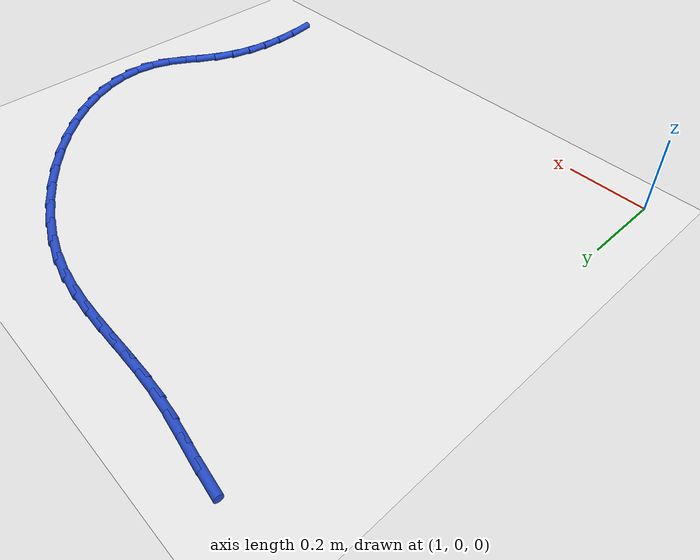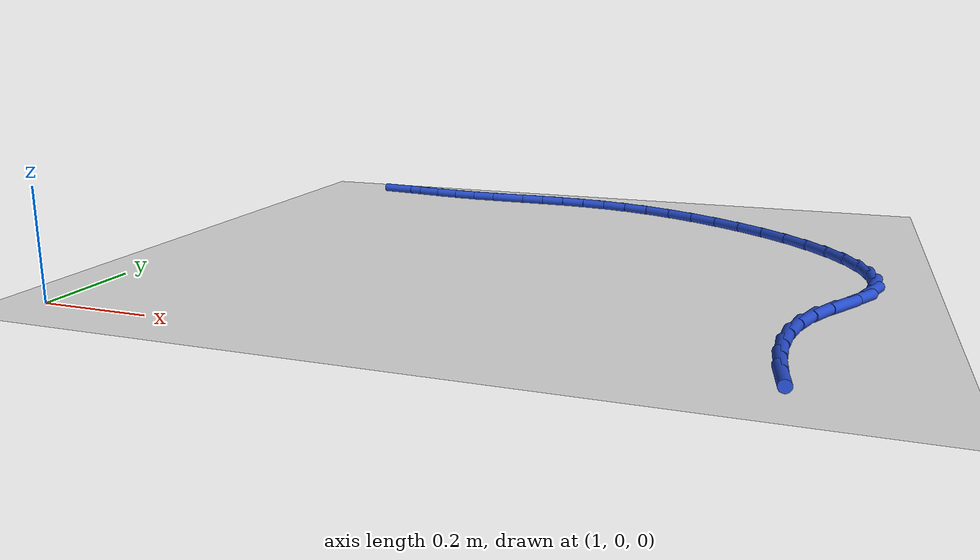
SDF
<sdf version="1.6">
 <world name="default">
  <model name="ground_plane">
   <static>1</static>
   <link name="link">
    <collision name="collision">
     <geometry><plane><normal>0 0 1</normal><size>100 100</size></plane></geometry>
     <surface><friction><ode><mu>100</mu><mu2>50</mu2></ode></friction></surface>
    </collision>
    <visual name="visual">
     <cast_shadows>0</cast_shadows>
     <geometry><plane><normal>0 0 1</normal><size>100 100</size></plane></geometry>
     <material>
      <script><uri>file://media/materials/scripts/gazebo.material</uri><name>Gazebo/WhiteGlow</name></script>
     </material>
    </visual>
   </link>
  </model>
  <model name="line">
   <link name="link_33">
    <pose>1.1399664649411008 1.140845286994282 0.01 0 1.57 -0.13207742308611625</pose>
    <collision name="collision">
     <geometry><cylinder><radius>0.01</radius><length>0.08</length></cylinder></geometry>
    </collision>
    <visual name="visual">
     <material>
      <script><name>Gazebo/Blue</name><uri>file://media/materials/scripts/gazebo.material</uri></script>
     </material>
     <geometry><cylinder><radius>0.01</radius><length>0.08</length></cylinder></geometry>
    </visual>
   </link>
   <link name="link_34">
    <pose>1.1952935334830628 1.1334950402394344 0.01 0 1.57 -0.15188084753118042</pose>
    <collision name="collision">
     <geometry><cylinder><radius>0.01</radius><length>0.08</length></cylinder></geometry>
    </collision>
    <visual name="visual">
     <material>
      <script><name>Gazebo/Blue</name><uri>file://media/materials/scripts/gazebo.material</uri></script>
     </material>
     <geometry><cylinder><radius>0.01</radius><length>0.08</length></cylinder></geometry>
    </visual>
   </link>
   <link name="link_35">
    <pose>1.2498085945413606 1.125150988057739 0.01 0 1.57 -0.14065346948717775</pose>
    <collision name="collision">
     <geometry><cylinder><radius>0.01</radius><length>0.08</length></cylinder></geometry>
    </collision>
    <visual name="visual">
     <material>
      <script><name>Gazebo/Blue</name><uri>file://media/materials/scripts/gazebo.material</uri></script>
     </material>
     <geometry><cylinder><radius>0.01</radius><length>0.08</length></cylinder></geometry>
    </visual>
   </link>
   <link name="link_36">
    <pose>1.3036869164387312 1.1175224424934112 0.01 0 1.57 -0.09560418442787234</pose>
    <collision name="collision">
     <geometry><cylinder><radius>0.01</radius><length>0.08</length></cylinder></geometry>
    </collision>
    <visual name="visual">
     <material>
      <script><name>Gazebo/Blue</name><uri>file://media/materials/scripts/gazebo.material</uri></script>
     </material>
     <geometry><cylinder><radius>0.01</radius><length>0.08</length></cylinder></geometry>
    </visual>
   </link>
   <link name="link_37">
    <pose>1.3571548655604277 1.1123950515726995 0.01 0 1.57 -0.044473799728148286</pose>
    <collision name="collision">
     <geometry><cylinder><radius>0.01</radius><length>0.08</length></cylinder></geometry>
    </collision>
    <visual name="visual">
     <material>
      <script><name>Gazebo/Blue</name><uri>file://media/materials/scripts/gazebo.material</uri></script>
     </material>
     <geometry><cylinder><radius>0.01</radius><length>0.08</length></cylinder></geometry>
    </visual>
   </link>
   <link name="link_38">
    <pose>1.4104235965559766 1.1100244255238378 0.01 0 1.57 -0.012918150865808532</pose>
    <collision name="collision">
     <geometry><cylinder><radius>0.01</radius><length>0.08</length></cylinder></geometry>
    </collision>
    <visual name="visual">
     <material>
      <script><name>Gazebo/Blue</name><uri>file://media/materials/scripts/gazebo.material</uri></script>
     </material>
     <geometry><cylinder><radius>0.01</radius><length>0.08</length></cylinder></geometry>
    </visual>
   </link>
   <link name="link_39">
    <pose>1.4636910420801956 1.1093362703464313 0.01 0 1.57 -0.0023242293383107107</pose>
    <collision name="collision">
     <geometry><cylinder><radius>0.01</radius><length>0.08</length></cylinder></geometry>
    </collision>
    <visual name="visual">
     <material>
      <script><name>Gazebo/Blue</name><uri>file://media/materials/scripts/gazebo.material</uri></script>
     </material>
     <geometry><cylinder><radius>0.01</radius><length>0.08</length></cylinder></geometry>
    </visual>
   </link>
   <link name="link_40">
    <pose>1.5171546945163963 1.1092120083331496 0.01 0 1.57 -0.012605718101820682</pose>
    <collision name="collision">
     <geometry><cylinder><radius>0.01</radius><length>0.08</length></cylinder></geometry>
    </collision>
    <visual name="visual">
     <material>
      <script><name>Gazebo/Blue</name><uri>file://media/materials/scripts/gazebo.material</uri></script>
     </material>
     <geometry><cylinder><radius>0.01</radius><length>0.08</length></cylinder></geometry>
    </visual>
   </link>
   <link name="link_41">
    <pose>1.571012046247889 1.1085330617766604 0.01 0 1.57 -0.043173737893640346</pose>
    <collision name="collision">
     <geometry><cylinder><radius>0.01</radius><length>0.08</length></cylinder></geometry>
    </collision>
    <visual name="visual">
     <material>
      <script><name>Gazebo/Blue</name><uri>file://media/materials/scripts/gazebo.material</uri></script>
     </material>
     <geometry><cylinder><radius>0.01</radius><length>0.08</length></cylinder></geometry>
    </visual>
   </link>
   <link name="link_42">
    <pose>1.6254605896579868 1.1061808529696338 0.01 0 1.57 -0.0928586615179386</pose>
    <collision name="collision">
     <geometry><cylinder><radius>0.01</radius><length>0.08</length></cylinder></geometry>
    </collision>
    <visual name="visual">
     <material>
      <script><name>Gazebo/Blue</name><uri>file://media/materials/scripts/gazebo.material</uri></script>
     </material>
     <geometry><cylinder><radius>0.01</radius><length>0.08</length></cylinder></geometry>
    </visual>
   </link>
   <link name="link_43">
    <pose>1.6806978171299982 1.1010368042047372 0.01 0 1.57 -0.1596734627402512</pose>
    <collision name="collision">
     <geometry><cylinder><radius>0.01</radius><length>0.08</length></cylinder></geometry>
    </collision>
    <visual name="visual">
     <material>
      <script><name>Gazebo/Blue</name><uri>file://media/materials/scripts/gazebo.material</uri></script>
     </material>
     <geometry><cylinder><radius>0.01</radius><length>0.08</length></cylinder></geometry>
    </visual>
   </link>
   <link name="link_44">
    <pose>1.7369212210472371 1.0919823377746407 0.01 0 1.57 -0.24056703282645728</pose>
    <collision name="collision">
     <geometry><cylinder><radius>0.01</radius><length>0.08</length></cylinder></geometry>
    </collision>
    <visual name="visual">
     <material>
      <script><name>Gazebo/Blue</name><uri>file://media/materials/scripts/gazebo.material</uri></script>
     </material>
     <geometry><cylinder><radius>0.01</radius><length>0.08</length></cylinder></geometry>
    </visual>
   </link>
   <link name="link_45">
    <pose>1.7943279041669606 1.0778994579160637 0.01 0 1.57 -0.32682078058079633</pose>
    <collision name="collision">
     <geometry><cylinder><radius>0.01</radius><length>0.08</length></cylinder></geometry>
    </collision>
    <visual name="visual">
     <material>
      <script><name>Gazebo/Blue</name><uri>file://media/materials/scripts/gazebo.material</uri></script>
     </material>
     <geometry><cylinder><radius>0.01</radius><length>0.08</length></cylinder></geometry>
    </visual>
   </link>
   <link name="link_46">
    <pose>1.8528535366499002 1.0580606436388436 0.01 0 1.57 -0.40527572523311445</pose>
    <collision name="collision">
     <geometry><cylinder><radius>0.01</radius><length>0.08</length></cylinder></geometry>
    </collision>
    <visual name="visual">
     <material>
      <script><name>Gazebo/Blue</name><uri>file://media/materials/scripts/gazebo.material</uri></script>
     </material>
     <geometry><cylinder><radius>0.01</radius><length>0.08</length></cylinder></geometry>
    </visual>
   </link>
   <link name="link_47">
    <pose>1.911719139091342 1.0328057719384887 0.01 0 1.57 -0.47724063288800106</pose>
    <collision name="collision">
     <geometry><cylinder><radius>0.01</radius><length>0.08</length></cylinder></geometry>
    </collision>
    <visual name="visual">
     <material>
      <script><name>Gazebo/Blue</name><uri>file://media/materials/scripts/gazebo.material</uri></script>
     </material>
     <geometry><cylinder><radius>0.01</radius><length>0.08</length></cylinder></geometry>
    </visual>
   </link>
   <link name="link_48">
    <pose>1.9700247293467827 1.0026554490615425 0.01 0 1.57 -0.5458063292827189</pose>
    <collision name="collision">
     <geometry><cylinder><radius>0.01</radius><length>0.08</length></cylinder></geometry>
    </collision>
    <visual name="visual">
     <material>
      <script><name>Gazebo/Blue</name><uri>file://media/materials/scripts/gazebo.material</uri></script>
     </material>
     <geometry><cylinder><radius>0.01</radius><length>0.08</length></cylinder></geometry>
    </visual>
   </link>
   <link name="link_49">
    <pose>2.0268703252717164 0.9681302812545499 0.01 0 1.57 -0.613669647728787</pose>
    <collision name="collision">
     <geometry><cylinder><radius>0.01</radius><length>0.08</length></cylinder></geometry>
    </collision>
    <visual name="visual">
     <material>
      <script><name>Gazebo/Blue</name><uri>file://media/materials/scripts/gazebo.material</uri></script>
     </material>
     <geometry><cylinder><radius>0.01</radius><length>0.08</length></cylinder></geometry>
    </visual>
   </link>
   <link name="link_50">
    <pose>2.0813559447216394 0.9297508747640546 0.01 0 1.57 -0.6833996395674194</pose>
    <collision name="collision">
     <geometry><cylinder><radius>0.01</radius><length>0.08</length></cylinder></geometry>
    </collision>
    <visual name="visual">
     <material>
      <script><name>Gazebo/Blue</name><uri>file://media/materials/scripts/gazebo.material</uri></script>
     </material>
     <geometry><cylinder><radius>0.01</radius><length>0.08</length></cylinder></geometry>
    </visual>
   </link>
   <link name="link_51">
    <pose>2.1325816055520463 0.8880378358366012 0.01 0 1.57 -0.7576772888659113</pose>
    <collision name="collision">
     <geometry><cylinder><radius>0.01</radius><length>0.08</length></cylinder></geometry>
    </collision>
    <visual name="visual">
     <material>
      <script><name>Gazebo/Blue</name><uri>file://media/materials/scripts/gazebo.material</uri></script>
     </material>
     <geometry><cylinder><radius>0.01</radius><length>0.08</length></cylinder></geometry>
    </visual>
   </link>
   <link name="link_52">
    <pose>2.179647325618433 0.8435117707187334 0.01 0 1.57 -0.8395273555790623</pose>
    <collision name="collision">
     <geometry><cylinder><radius>0.01</radius><length>0.08</length></cylinder></geometry>
    </collision>
    <visual name="visual">
     <material>
      <script><name>Gazebo/Blue</name><uri>file://media/materials/scripts/gazebo.material</uri></script>
     </material>
     <geometry><cylinder><radius>0.01</radius><length>0.08</length></cylinder></geometry>
    </visual>
   </link>
   <link name="link_53">
    <pose>2.2216531227762943 0.7966932856569958 0.01 0 1.57 -0.9325425542378575</pose>
    <collision name="collision">
     <geometry><cylinder><radius>0.01</radius><length>0.08</length></cylinder></geometry>
    </collision>
    <visual name="visual">
     <material>
      <script><name>Gazebo/Blue</name><uri>file://media/materials/scripts/gazebo.material</uri></script>
     </material>
     <geometry><cylinder><radius>0.01</radius><length>0.08</length></cylinder></geometry>
    </visual>
   </link>
   <link name="link_54">
    <pose>2.257699014881125 0.7481029868979323 0.01 0 1.57 -1.041050001515718</pose>
    <collision name="collision">
     <geometry><cylinder><radius>0.01</radius><length>0.08</length></cylinder></geometry>
    </collision>
    <visual name="visual">
     <material>
      <script><name>Gazebo/Blue</name><uri>file://media/materials/scripts/gazebo.material</uri></script>
     </material>
     <geometry><cylinder><radius>0.01</radius><length>0.08</length></cylinder></geometry>
    </visual>
   </link>
   <link name="link_55">
    <pose>2.2868850197884214 0.6982614806880869 0.01 0 1.57 -1.1700485356183823</pose>
    <collision name="collision">
     <geometry><cylinder><radius>0.01</radius><length>0.08</length></cylinder></geometry>
    </collision>
    <visual name="visual">
     <material>
      <script><name>Gazebo/Blue</name><uri>file://media/materials/scripts/gazebo.material</uri></script>
     </material>
     <geometry><cylinder><radius>0.01</radius><length>0.08</length></cylinder></geometry>
    </visual>
   </link>
   <link name="link_56">
    <pose>2.3083111553536777 0.6476893732740043 0.01 0 1.57 -1.324506682947514</pose>
    <collision name="collision">
     <geometry><cylinder><radius>0.01</radius><length>0.08</length></cylinder></geometry>
    </collision>
    <visual name="visual">
     <material>
      <script><name>Gazebo/Blue</name><uri>file://media/materials/scripts/gazebo.material</uri></script>
     </material>
     <geometry><cylinder><radius>0.01</radius><length>0.08</length></cylinder></geometry>
    </visual>
   </link>
   <link name="link_57">
    <pose>2.3210774394323903 0.5969072709022283 0.01 0 1.57 -1.507351657443786</pose>
    <collision name="collision">
     <geometry><cylinder><radius>0.01</radius><length>0.08</length></cylinder></geometry>
    </collision>
    <visual name="visual">
     <material>
      <script><name>Gazebo/Blue</name><uri>file://media/materials/scripts/gazebo.material</uri></script>
     </material>
     <geometry><cylinder><radius>0.01</radius><length>0.08</length></cylinder></geometry>
    </visual>
   </link>
   <link name="link_58">
    <pose>2.3242838898800535 0.5464357798193034 0.01 0 1.57 1.4257045521965226</pose>
    <collision name="collision">
     <geometry><cylinder><radius>0.01</radius><length>0.08</length></cylinder></geometry>
    </collision>
    <visual name="visual">
     <material>
      <script><name>Gazebo/Blue</name><uri>file://media/materials/scripts/gazebo.material</uri></script>
     </material>
     <geometry><cylinder><radius>0.01</radius><length>0.08</length></cylinder></geometry>
    </visual>
   </link>
   <link name="link_59">
    <pose>2.317030524552163 0.49679550627177327 0.01 0 1.57 1.2051560144287368</pose>
    <collision name="collision">
     <geometry><cylinder><radius>0.01</radius><length>0.08</length></cylinder></geometry>
    </collision>
    <visual name="visual">
     <material>
      <script><name>Gazebo/Blue</name><uri>file://media/materials/scripts/gazebo.material</uri></script>
     </material>
     <geometry><cylinder><radius>0.01</radius><length>0.08</length></cylinder></geometry>
    </visual>
   </link>
   <link name="link_60">
    <pose>2.2985329453777528 0.4484807955326286 0.01 0 1.57 1.0495894341357448</pose>
    <collision name="collision">
     <geometry><cylinder><radius>0.01</radius><length>0.08</length></cylinder></geometry>
    </collision>
    <visual name="visual">
     <material>
      <script><name>Gazebo/Blue</name><uri>file://media/materials/scripts/gazebo.material</uri></script>
     </material>
     <geometry><cylinder><radius>0.01</radius><length>0.08</length></cylinder></geometry>
    </visual>
   </link>
   <link name="link_61">
    <pose>2.2713952051657813 0.4012161288596668 0.01 0 1.57 1.016477158710644</pose>
    <collision name="collision">
     <geometry><cylinder><radius>0.01</radius><length>0.08</length></cylinder></geometry>
    </collision>
    <visual name="visual">
     <material>
      <script><name>Gazebo/Blue</name><uri>file://media/materials/scripts/gazebo.material</uri></script>
     </material>
     <geometry><cylinder><radius>0.01</radius><length>0.08</length></cylinder></geometry>
    </visual>
   </link>
   <link name="link_62">
    <pose>2.242073086862117 0.35385086535790333 0.01 0 1.57 1.0965608662463282</pose>
    <collision name="collision">
     <geometry><cylinder><radius>0.01</radius><length>0.08</length></cylinder></geometry>
    </collision>
    <visual name="visual">
     <material>
      <script><name>Gazebo/Blue</name><uri>file://media/materials/scripts/gazebo.material</uri></script>
     </material>
     <geometry><cylinder><radius>0.01</radius><length>0.08</length></cylinder></geometry>
    </visual>
   </link>
   <link name="link_63">
    <pose>2.2171058104328525 0.3052107003763693 0.01 0 1.57 1.2367962862194088</pose>
    <collision name="collision">
     <geometry><cylinder><radius>0.01</radius><length>0.08</length></cylinder></geometry>
    </collision>
    <visual name="visual">
     <material>
      <script><name>Gazebo/Blue</name><uri>file://media/materials/scripts/gazebo.material</uri></script>
     </material>
     <geometry><cylinder><radius>0.01</radius><length>0.08</length></cylinder></geometry>
    </visual>
   </link>
   <link name="link_64">
    <pose>2.1996034289293935 0.25477161318875824 0.01 0 1.57 1.3681958739009086</pose>
    <collision name="collision">
     <geometry><cylinder><radius>0.01</radius><length>0.08</length></cylinder></geometry>
    </collision>
    <visual name="visual">
     <material>
      <script><name>Gazebo/Blue</name><uri>file://media/materials/scripts/gazebo.material</uri></script>
     </material>
     <geometry><cylinder><radius>0.01</radius><length>0.08</length></cylinder></geometry>
    </visual>
   </link>
   <link name="link_65">
    <pose>2.1889117503856212 0.20272340892917723 0.01 0 1.57 1.482544848705377</pose>
    <collision name="collision">
     <geometry><cylinder><radius>0.01</radius><length>0.08</length></cylinder></geometry>
    </collision>
    <visual name="visual">
     <material>
      <script><name>Gazebo/Blue</name><uri>file://media/materials/scripts/gazebo.material</uri></script>
     </material>
     <geometry><cylinder><radius>0.01</radius><length>0.08</length></cylinder></geometry>
    </visual>
   </link>
   <link name="link_66">
    <pose>2.1841841044011403 0.14929239303480019 0.01 0 1.57 -1.5636571576500735</pose>
    <collision name="collision">
     <geometry><cylinder><radius>0.01</radius><length>0.08</length></cylinder></geometry>
    </collision>
    <visual name="visual">
     <material>
      <script><name>Gazebo/Blue</name><uri>file://media/materials/scripts/gazebo.material</uri></script>
     </material>
     <geometry><cylinder><radius>0.01</radius><length>0.08</length></cylinder></geometry>
    </visual>
   </link>
   <link name="link_67">
    <pose>2.184573820575558 0.09470487094280211 0.01 0 1.57 -1.48704816596049</pose>
    <collision name="collision">
     <geometry><cylinder><radius>0.01</radius><length>0.08</length></cylinder></geometry>
    </collision>
    <visual name="visual">
     <material>
      <script><name>Gazebo/Blue</name><uri>file://media/materials/scripts/gazebo.material</uri></script>
     </material>
     <geometry><cylinder><radius>0.01</radius><length>0.08</length></cylinder></geometry>
    </visual>
   </link>
   <link name="link_68">
    <pose>2.189234228508481 0.039187148090356595 0.01 0 1.57 -1.4279795663344435</pose>
    <collision name="collision">
     <geometry><cylinder><radius>0.01</radius><length>0.08</length></cylinder></geometry>
    </collision>
    <visual name="visual">
     <material>
      <script><name>Gazebo/Blue</name><uri>file://media/materials/scripts/gazebo.material</uri></script>
     </material>
     <geometry><cylinder><radius>0.01</radius><length>0.08</length></cylinder></geometry>
    </visual>
   </link>
  </model>
 </world>
</sdf>
